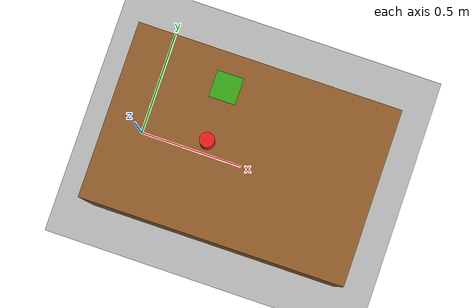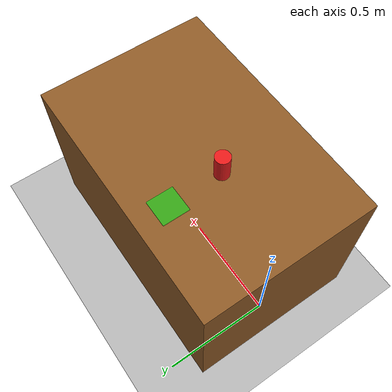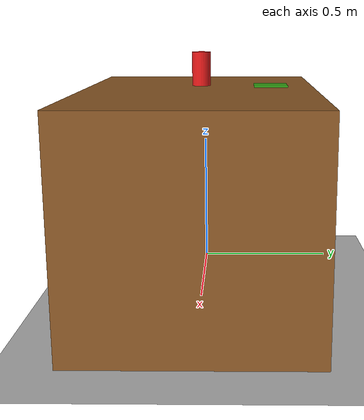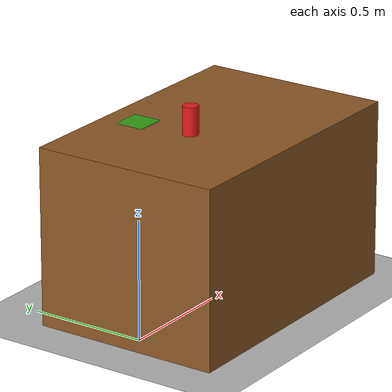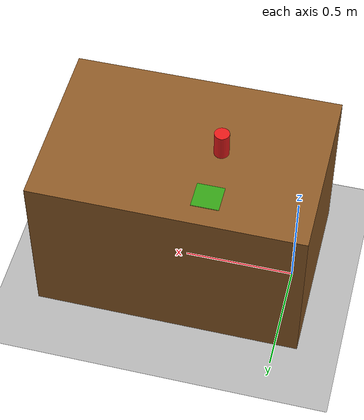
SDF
<?xml version="1.0" ?>
<sdf version="1.9">
  <world name="so101_table">

    <plugin filename="gz-sim-physics-system"
            name="gz::sim::systems::Physics"/>
    <plugin filename="gz-sim-user-commands-system"
            name="gz::sim::systems::UserCommands"/>
    <plugin filename="gz-sim-scene-broadcaster-system"
            name="gz::sim::systems::SceneBroadcaster"/>
    <plugin filename="gz-sim-sensors-system"
            name="gz::sim::systems::Sensors">
      <render_engine>ogre2</render_engine>
    </plugin>

    <!-- Sunlight -->
    <light type="directional" name="sun">
      <cast_shadows>true</cast_shadows>
      <pose>0 0 10 0 0 0</pose>
      <diffuse>0.8 0.8 0.8 1</diffuse>
      <specular>0.2 0.2 0.2 1</specular>
      <direction>-0.5 0.1 -0.9</direction>
    </light>

    <!-- Ground plane -->
    <model name="ground_plane">
      <static>true</static>
      <link name="link">
        <collision name="collision">
          <geometry><plane><normal>0 0 1</normal><size>20 20</size></plane></geometry>
        </collision>
        <visual name="visual">
          <geometry><plane><normal>0 0 1</normal><size>20 20</size></plane></geometry>
          <material>
            <ambient>0.7 0.7 0.7 1</ambient>
            <diffuse>0.7 0.7 0.7 1</diffuse>
          </material>
        </visual>
      </link>
    </model>

    <!-- Table (arm base at origin, table surface at z=0.75m) -->
    <model name="table">
      <static>true</static>
      <pose>0.5 0 0.375 0 0 0</pose>
      <link name="link">
        <collision name="collision">
          <geometry><box><size>1.2 0.8 0.75</size></box></geometry>
        </collision>
        <visual name="visual">
          <geometry><box><size>1.2 0.8 0.75</size></box></geometry>
          <material>
            <ambient>0.55 0.35 0.15 1</ambient>
            <diffuse>0.55 0.35 0.15 1</diffuse>
          </material>
        </visual>
      </link>
    </model>

    <!-- Pick target — red cylinder -->
    <!-- TODO(hardware): set position from calibration; this is a placeholder -->
    <model name="pick_object">
      <pose>0.35 0.0 0.812 0 0 0</pose>
      <link name="link">
        <collision name="collision">
          <geometry><cylinder><radius>0.033</radius><length>0.12</length></cylinder></geometry>
        </collision>
        <visual name="visual">
          <geometry><cylinder><radius>0.033</radius><length>0.12</length></cylinder></geometry>
          <material><ambient>0.9 0.1 0.1 1</ambient><diffuse>0.9 0.1 0.1 1</diffuse></material>
        </visual>
        <inertial>
          <mass>0.15</mass>
          <inertia><ixx>3e-4</ixx><iyy>3e-4</iyy><izz>8e-5</izz></inertia>
        </inertial>
      </link>
    </model>

    <!-- Drop zone — green box -->
    <!-- TODO(hardware): set position from calibration -->
    <model name="drop_zone">
      <static>true</static>
      <pose>0.35 0.25 0.752 0 0 0</pose>
      <link name="link">
        <visual name="visual">
          <geometry><box><size>0.12 0.12 0.005</size></box></geometry>
          <material><ambient>0.1 0.8 0.1 0.7</ambient><diffuse>0.1 0.8 0.1 0.7</diffuse></material>
        </visual>
      </link>
    </model>

    <model name="scene_camera">
      <static>true</static>
      <!-- Top-down over the objects (x≈0.35): straight down (pitch=90°) so the
           arm doesn't occlude the cylinder/drop-zone. Clean overview for detection. -->
      <pose>0.35 0 1.5 0 1.5708 0</pose>
      <link name="link">
        <sensor name="scene_cam" type="camera">
          <update_rate>30</update_rate>
          <topic>scene_camera/image_raw</topic>
          <camera>
            <horizontal_fov>1.25</horizontal_fov>
            <image><width>640</width><height>480</height><format>R8G8B8</format></image>
            <clip><near>0.05</near><far>20.0</far></clip>
          </camera>
          <always_on>1</always_on>
          <visualize>true</visualize>
        </sensor>
      </link>
    </model>

  </world>
</sdf>
